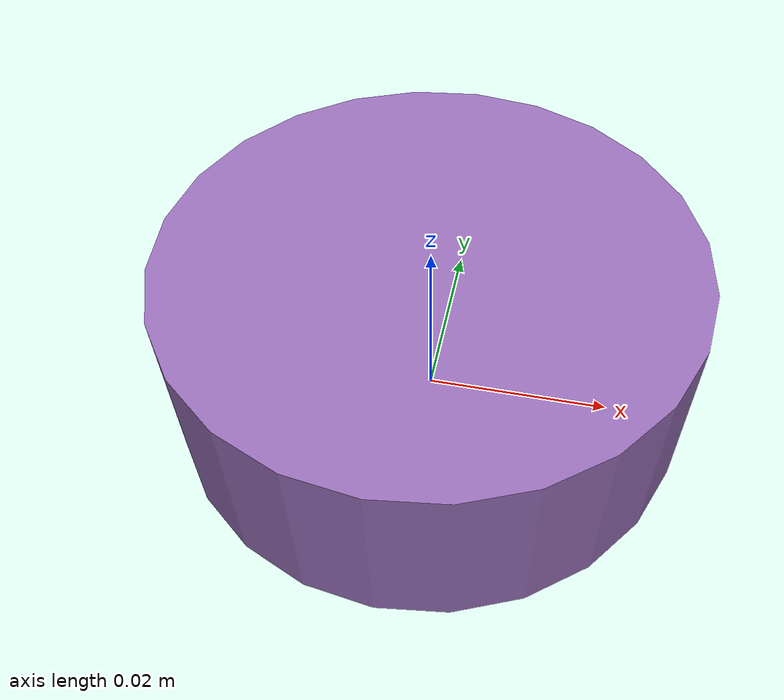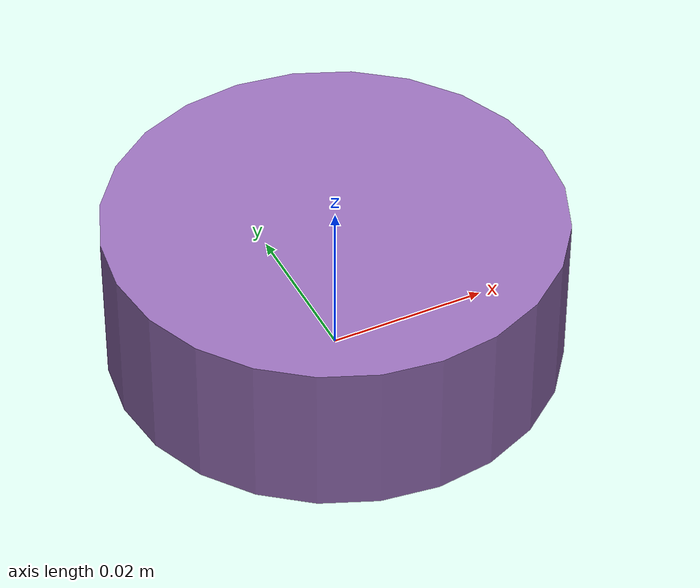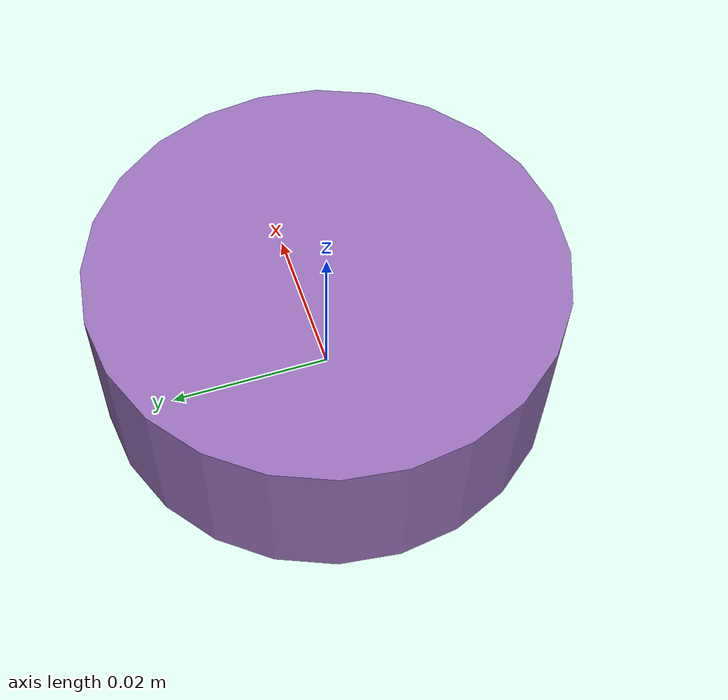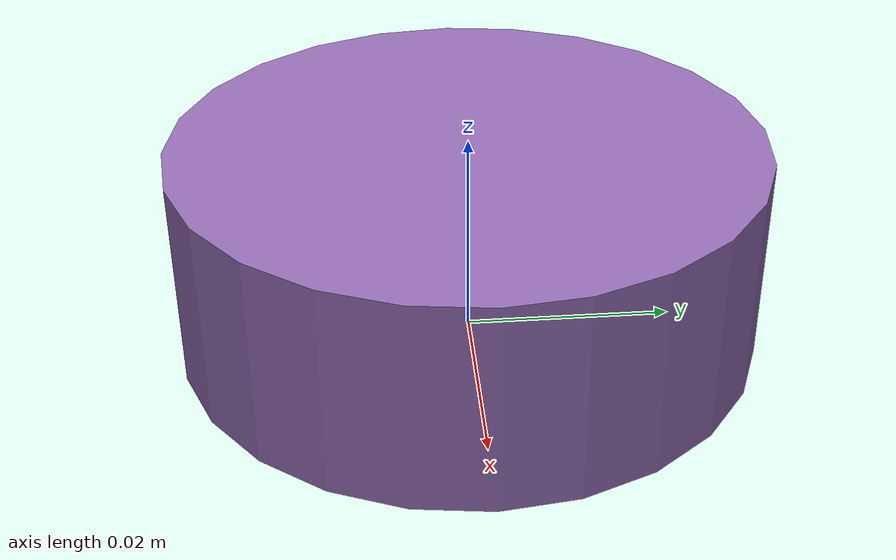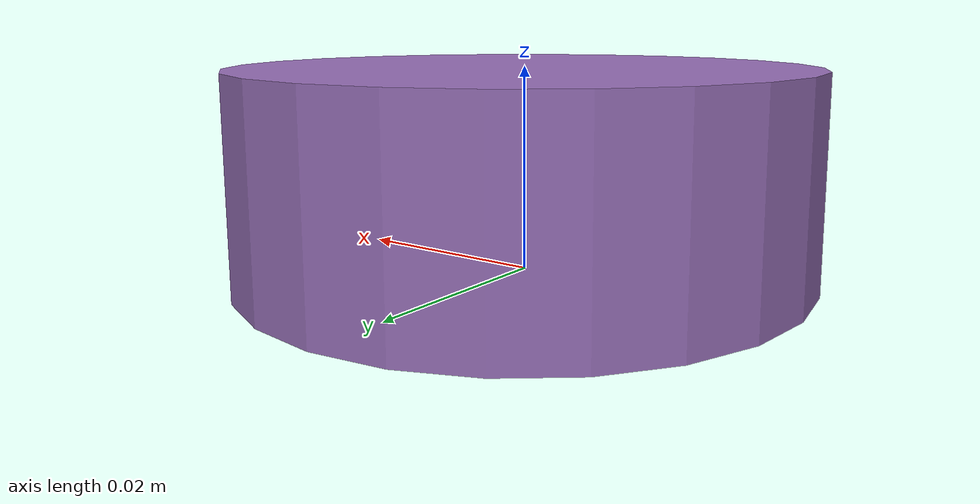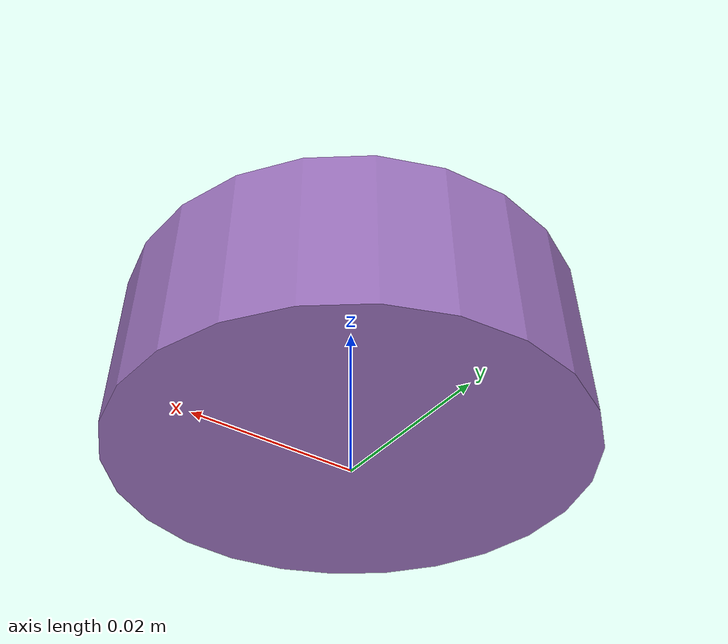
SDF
<sdf version="1.7">
  <model name="disc_28">
    <link name="base_link">
      <inertial>
        <mass>0.05</mass>
        <inertia>
          <ixx>7.91e-06</ixx>
          <ixy>0</ixy>
          <ixz>0</ixz>
          <iyy>7.91e-06</iyy>
          <iyz>0</iyz>
          <izz>1.56e-05</izz>
        </inertia>
        <pose>0 0 0.0025 0 0 0</pose>
      </inertial>
      <pose>0 0 0 0 0 0</pose>
      <visual name="visual">
        <pose>0 0 0.01 0 0 0</pose>
        <geometry>
            <cylinder>
              <radius>0.028000000000000004</radius>
              <length>0.02</length>
            </cylinder>
        </geometry>
        <material>
          <diffuse>0.5903517639265148 0.4344467640909623 0.7186088572139536 1</diffuse>
        </material>
      </visual>
      <collision name="collision">
        <pose>0 0 0.01 0 0 0</pose>
        <geometry>
            <cylinder>
              <radius>0.028000000000000004</radius>
              <length>0.02</length>
            </cylinder>
        </geometry>
      </collision>
      <collision name="ball1">
        <pose>0.019798989873223333 0.019798989873223333 0 0 0 0</pose>
        <geometry>
          <sphere>
            <radius>1e-07</radius>
          </sphere>
        </geometry>
      </collision>
      <collision name="ball2">
        <pose>-0.019798989873223333 0.019798989873223333 0 0 0 0</pose>
        <geometry>
          <sphere>
            <radius>1e-07</radius>
          </sphere>
        </geometry>
      </collision>
      <collision name="ball3">
        <pose>0.019798989873223333 -0.019798989873223333 0 0 0 0</pose>
        <geometry>
          <sphere>
            <radius>1e-07</radius>
          </sphere>
        </geometry>
      </collision>
      <collision name="ball4">
        <pose>-0.019798989873223333 -0.019798989873223333 0 0 0 0</pose>
        <geometry>
          <sphere>
            <radius>1e-07</radius>
          </sphere>
        </geometry>
      </collision>
    </link>
  </model>
</sdf>
